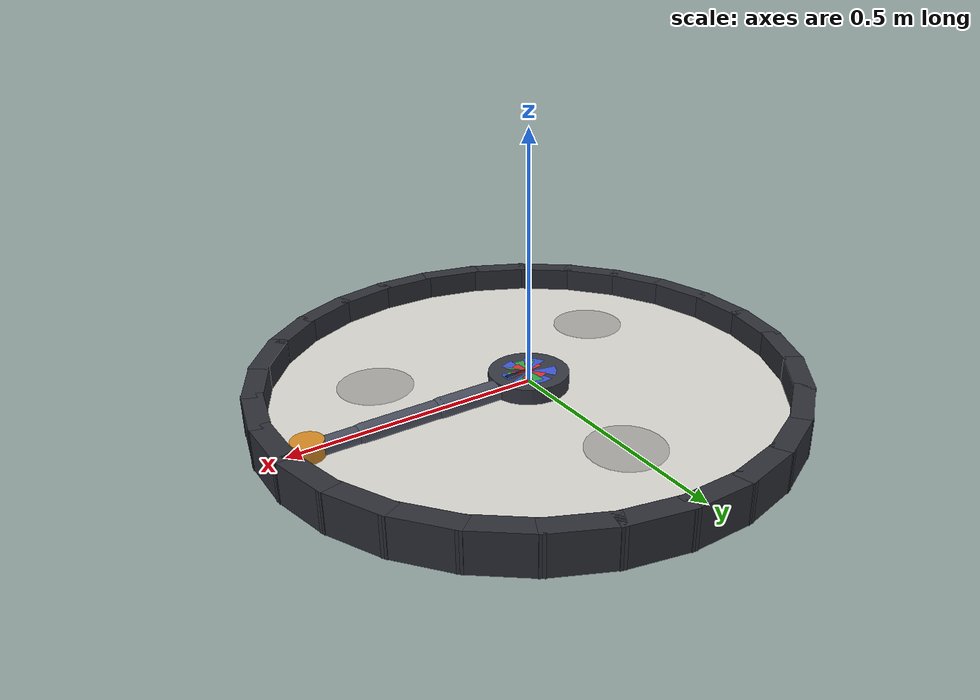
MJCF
<mujoco model="patchworks-planar-sandbox">
  <compiler angle="radian" autolimits="true"/>
  <option timestep="0.002" gravity="0 0 0" integrator="implicitfast"/>

  <visual>
    <global offwidth="640" offheight="640"/>
    <headlight ambient="0.6 0.6 0.6" diffuse="0.4 0.4 0.4"/>
  </visual>

  <default>
    <geom friction="0.6 0.005 0.0001" solref="0.008 1" density="500"/>
    <joint armature="0.01"/>
    <default class="link">
      <geom type="capsule" size="0.022" rgba="0.30 0.32 0.38 1"/>
    </default>
    <default class="puck">
      <geom type="cylinder" contype="1" conaffinity="1"/>
      <joint armature="0" solimpfriction="0.9999 0.9999 0.001 0.5 2"/>
    </default>
    <default class="wall">
      <geom type="box" rgba="0.18 0.19 0.22 1" contype="1" conaffinity="1"/>
    </default>
    <default class="zone">
      <!-- visual only: zones mark goals, they do not push anything -->
      <site type="cylinder" size="0.075 0.001" rgba="0.35 0.35 0.35 0.35"/>
    </default>
  </default>

  <worldbody>
    <!-- backdrop for the top-down render -->
    <geom name="table" type="cylinder" pos="0 0 -0.03" size="0.52 0.02"
          rgba="0.86 0.85 0.82 1" contype="0" conaffinity="0"/>

    <camera name="topdown" pos="0 0 1.4" euler="0 0 0" fovy="42"/>

    <geom class="wall" name="wall_00" pos="0.5200 0.0000 0" euler="0 0 1.5708" size="0.0666 0.02 0.04"/>
    <geom class="wall" name="wall_01" pos="0.5070 0.1157 0" euler="0 0 1.7952" size="0.0666 0.02 0.04"/>
    <geom class="wall" name="wall_02" pos="0.4685 0.2256 0" euler="0 0 2.0196" size="0.0666 0.02 0.04"/>
    <geom class="wall" name="wall_03" pos="0.4066 0.3242 0" euler="0 0 2.2440" size="0.0666 0.02 0.04"/>
    <geom class="wall" name="wall_04" pos="0.3242 0.4066 0" euler="0 0 2.4684" size="0.0666 0.02 0.04"/>
    <geom class="wall" name="wall_05" pos="0.2256 0.4685 0" euler="0 0 2.6928" size="0.0666 0.02 0.04"/>
    <geom class="wall" name="wall_06" pos="0.1157 0.5070 0" euler="0 0 2.9172" size="0.0666 0.02 0.04"/>
    <geom class="wall" name="wall_07" pos="0.0000 0.5200 0" euler="0 0 3.1416" size="0.0666 0.02 0.04"/>
    <geom class="wall" name="wall_08" pos="-0.1157 0.5070 0" euler="0 0 3.3660" size="0.0666 0.02 0.04"/>
    <geom class="wall" name="wall_09" pos="-0.2256 0.4685 0" euler="0 0 3.5904" size="0.0666 0.02 0.04"/>
    <geom class="wall" name="wall_10" pos="-0.3242 0.4066 0" euler="0 0 3.8148" size="0.0666 0.02 0.04"/>
    <geom class="wall" name="wall_11" pos="-0.4066 0.3242 0" euler="0 0 4.0392" size="0.0666 0.02 0.04"/>
    <geom class="wall" name="wall_12" pos="-0.4685 0.2256 0" euler="0 0 4.2636" size="0.0666 0.02 0.04"/>
    <geom class="wall" name="wall_13" pos="-0.5070 0.1157 0" euler="0 0 4.4880" size="0.0666 0.02 0.04"/>
    <geom class="wall" name="wall_14" pos="-0.5200 0.0000 0" euler="0 0 4.7124" size="0.0666 0.02 0.04"/>
    <geom class="wall" name="wall_15" pos="-0.5070 -0.1157 0" euler="0 0 4.9368" size="0.0666 0.02 0.04"/>
    <geom class="wall" name="wall_16" pos="-0.4685 -0.2256 0" euler="0 0 5.1612" size="0.0666 0.02 0.04"/>
    <geom class="wall" name="wall_17" pos="-0.4066 -0.3242 0" euler="0 0 5.3856" size="0.0666 0.02 0.04"/>
    <geom class="wall" name="wall_18" pos="-0.3242 -0.4066 0" euler="0 0 5.6100" size="0.0666 0.02 0.04"/>
    <geom class="wall" name="wall_19" pos="-0.2256 -0.4685 0" euler="0 0 5.8344" size="0.0666 0.02 0.04"/>
    <geom class="wall" name="wall_20" pos="-0.1157 -0.5070 0" euler="0 0 6.0588" size="0.0666 0.02 0.04"/>
    <geom class="wall" name="wall_21" pos="-0.0000 -0.5200 0" euler="0 0 6.2832" size="0.0666 0.02 0.04"/>
    <geom class="wall" name="wall_22" pos="0.1157 -0.5070 0" euler="0 0 6.5076" size="0.0666 0.02 0.04"/>
    <geom class="wall" name="wall_23" pos="0.2256 -0.4685 0" euler="0 0 6.7320" size="0.0666 0.02 0.04"/>
    <geom class="wall" name="wall_24" pos="0.3242 -0.4066 0" euler="0 0 6.9564" size="0.0666 0.02 0.04"/>
    <geom class="wall" name="wall_25" pos="0.4066 -0.3242 0" euler="0 0 7.1808" size="0.0666 0.02 0.04"/>
    <geom class="wall" name="wall_26" pos="0.4685 -0.2256 0" euler="0 0 7.4052" size="0.0666 0.02 0.04"/>
    <geom class="wall" name="wall_27" pos="0.5070 -0.1157 0" euler="0 0 7.6296" size="0.0666 0.02 0.04"/>

    <!-- target zones: fixed positions, one of them is lit up as the goal -->
    <site class="zone" name="zone_0" pos="0.0 0.3 0"/>
    <site class="zone" name="zone_1" pos="-0.26 -0.15 0"/>
    <site class="zone" name="zone_2" pos="0.26 -0.15 0"/>

    <!-- ================= the body: 3-link planar arm, torque control ================= -->
    <body name="base" pos="0 0 0">
      <geom name="g_pedestal" type="cylinder" size="0.08 0.022" rgba="0.22 0.23 0.27 1"/>

      <body name="link0" pos="0 0 0">
        <joint name="j0" type="hinge" axis="0 0 1" damping="0.8" armature="0.12" range="-3.1416 3.1416"/>
        <geom class="link" name="g_link0" fromto="0 0 0  0.20 0 0"/>
        <site name="touch0" type="capsule" fromto="0 0 0  0.20 0 0" size="0.030" rgba="0 0 0 0"/>

        <body name="link1" pos="0.20 0 0">
          <joint name="j1" type="hinge" axis="0 0 1" damping="0.5" armature="0.02" range="-2.6 2.6"/>
          <geom class="link" name="g_link1" fromto="0 0 0  0.16 0 0" size="0.020"/>
          <site name="touch1" type="capsule" fromto="0 0 0  0.16 0 0" size="0.028" rgba="0 0 0 0"/>

          <body name="link2" pos="0.16 0 0">
            <joint name="j2" type="hinge" axis="0 0 1" damping="0.3" armature="0.002" range="-2.6 2.6"/>
            <geom class="link" name="g_link2" fromto="0 0 0  0.10 0 0" size="0.018"/>
            <!-- rounded paddle: the only thing that meets the world -->
            <geom name="g_tip" type="cylinder" pos="0.10 0 0" size="0.030 0.022" rgba="0.85 0.55 0.15 1"/>
            <site name="touch2" type="capsule" fromto="0 0 0  0.10 0 0" size="0.040" rgba="0 0 0 0"/>
            <site name="tip" pos="0.10 0 0" size="0.008" rgba="1 1 1 0"/>
          </body>
        </body>
      </body>
    </body>

    <!-- ================= the world: three sliding pucks ================= -->
    <body name="puck_0" pos="0 0 0">
      <!-- mu = 0.20 -->
      <joint name="p0_x" class="puck" type="slide" axis="1 0 0" damping="0.02" frictionloss="0.098"/>
      <joint name="p0_y" class="puck" type="slide" axis="0 1 0" damping="0.02" frictionloss="0.098"/>
      <joint name="p0_r" class="puck" type="hinge" axis="0 0 1" damping="0.002" frictionloss="0.0023"/>
      <geom class="puck" name="g_puck_0" size="0.035 0.022" mass="0.05" rgba="0.85 0.20 0.20 1"/>
      <geom type="box" pos="0.018 0 0.023" size="0.014 0.005 0.001" rgba="0.35 0.05 0.05 1"
            contype="0" conaffinity="0"/>
    </body>

    <body name="puck_1" pos="0 0 0">
      <!-- mu = 0.30 -->
      <joint name="p1_x" class="puck" type="slide" axis="1 0 0" damping="0.02" frictionloss="0.294"/>
      <joint name="p1_y" class="puck" type="slide" axis="0 1 0" damping="0.02" frictionloss="0.294"/>
      <joint name="p1_r" class="puck" type="hinge" axis="0 0 1" damping="0.003" frictionloss="0.011"/>
      <geom class="puck" name="g_puck_1" size="0.045 0.022" mass="0.055" rgba="0.20 0.65 0.30 1"/>
      <geom type="sphere" name="g_puck_1_cm" pos="0.04 0 0" size="0.004" mass="0.045"
            rgba="0.20 0.65 0.30 1" contype="0" conaffinity="0"/>
      <geom type="box" pos="0.024 0 0.023" size="0.018 0.005 0.001" rgba="0.05 0.25 0.10 1"
            contype="0" conaffinity="0"/>
    </body>

    <body name="puck_2" pos="0 0 0">
      <!-- mu = 0.45 -->
      <joint name="p2_x" class="puck" type="slide" axis="1 0 0" damping="0.02" frictionloss="0.883"/>
      <joint name="p2_y" class="puck" type="slide" axis="0 1 0" damping="0.02" frictionloss="0.883"/>
      <joint name="p2_r" class="puck" type="hinge" axis="0 0 1" damping="0.004" frictionloss="0.042"/>
      <geom class="puck" name="g_puck_2" size="0.055 0.022" mass="0.20" rgba="0.25 0.35 0.85 1"/>
      <geom type="box" pos="0.030 0 0.023" size="0.022 0.005 0.001" rgba="0.05 0.10 0.30 1"
            contype="0" conaffinity="0"/>
    </body>
  </worldbody>

  <contact>
    <exclude body1="base" body2="link0"/>
  </contact>

  <actuator>
    <motor name="m0" joint="j0" gear="1" ctrlrange="-3.0 3.0"/>
    <motor name="m1" joint="j1" gear="1" ctrlrange="-2.0 2.0"/>
    <motor name="m2" joint="j2" gear="1" ctrlrange="-1.0 1.0"/>
  </actuator>

  <sensor>
    <touch name="t0" site="touch0"/>
    <touch name="t1" site="touch1"/>
    <touch name="t2" site="touch2"/>
  </sensor>
</mujoco>
